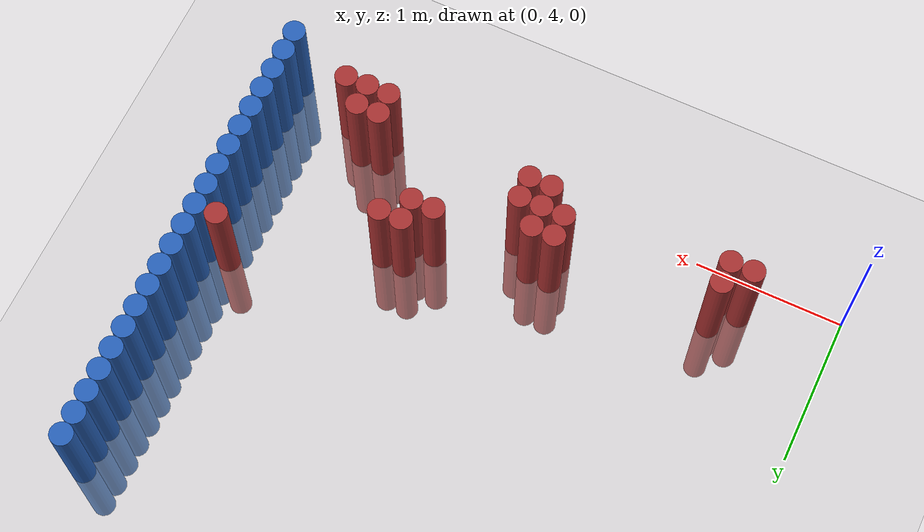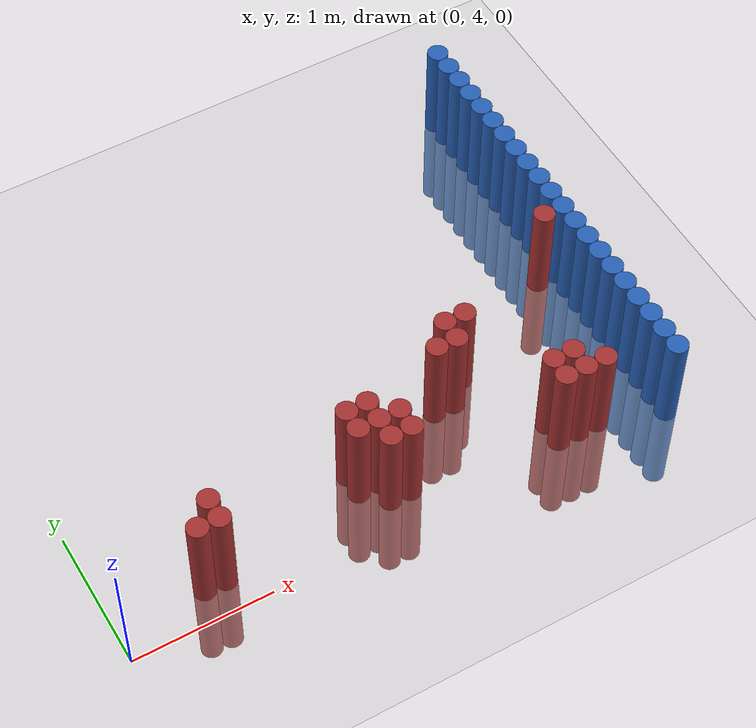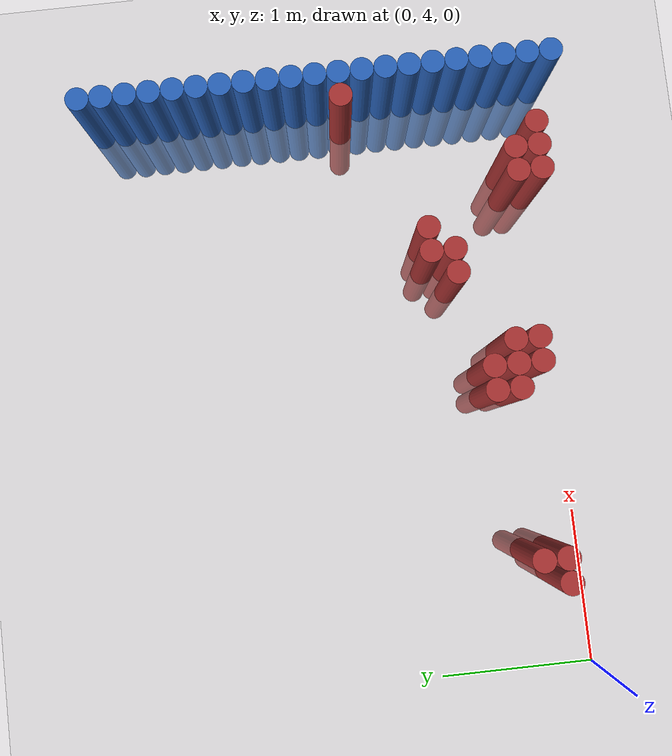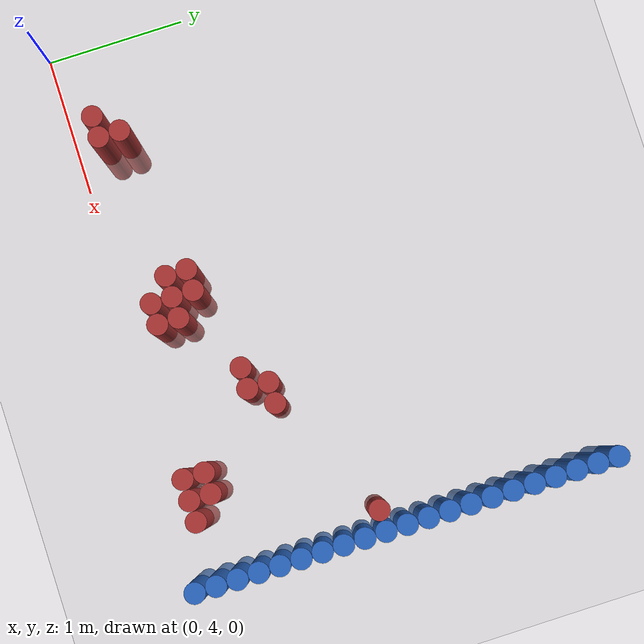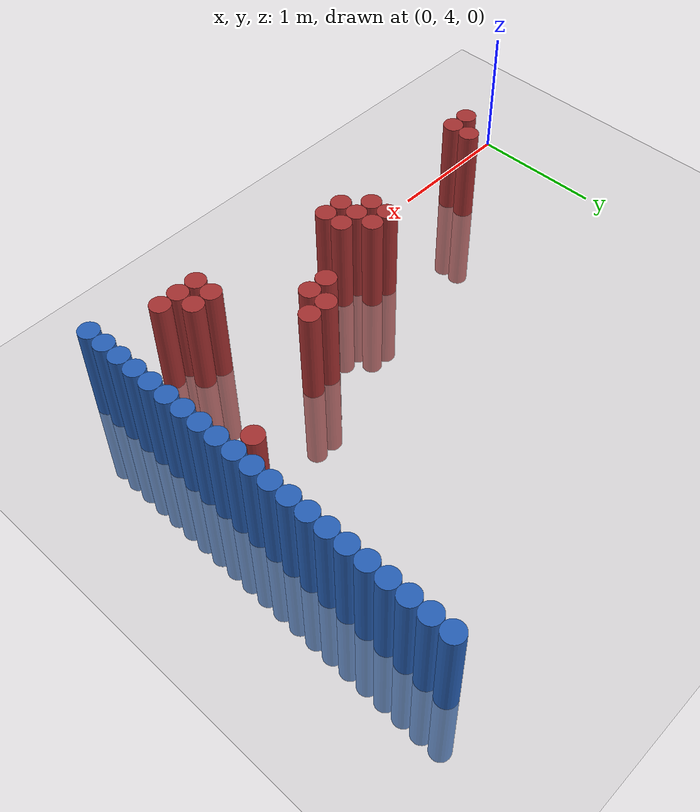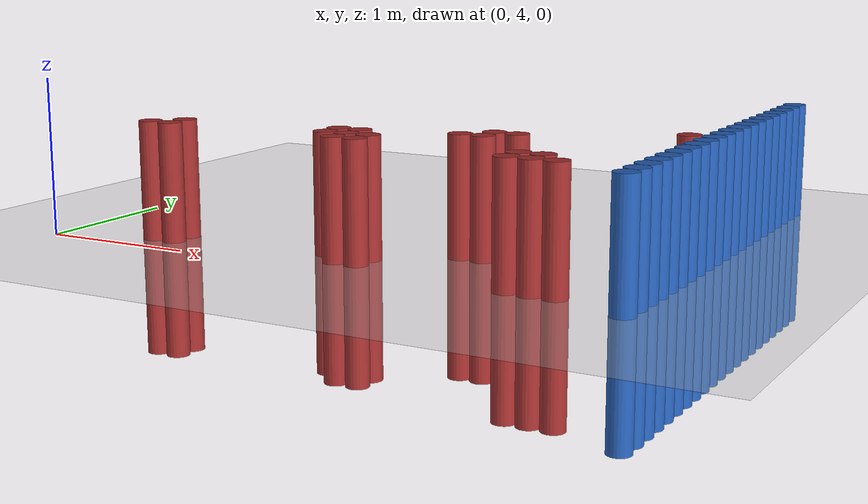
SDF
<sdf version="1.6">
 <world name="default">
  <model name="ground_plane">
   <static>1</static>
   <link name="link">
    <collision name="collision">
     <geometry><plane><normal>0 0 1</normal><size>100 100</size></plane></geometry>
     <surface><friction><ode><mu>100</mu><mu2>50</mu2></ode></friction></surface>
    </collision>
    <visual name="visual">
     <cast_shadows>0</cast_shadows>
     <geometry><plane><normal>0 0 1</normal><size>100 100</size></plane></geometry>
     <material>
      <script><uri>file://media/materials/scripts/gazebo.material</uri><name>Gazebo/Grey</name></script>
     </material>
    </visual>
   </link>
  </model>
  <model name="unit_cylinder_166">
   <static>1</static>
   <pose>3.925000 3.925000 0.000000 0.000000 0.000000 0.000000</pose>
   <link name="link">
    <inertial>
     <mass>1</mass>
     <inertia><ixx>0.145833</ixx><ixy>0</ixy><ixz>0</ixz><iyy>0.145833</iyy><iyz>0</iyz><izz>0.125</izz></inertia>
    </inertial>
    <collision name="collision">
     <geometry><cylinder><radius>0.075000</radius><length>1.5</length></cylinder></geometry>
    </collision>
    <visual name="visual">
     <geometry><cylinder><radius>0.075000</radius><length>1.5</length></cylinder></geometry>
     <material>
      <ambient>0.152000 0.379000 0.720000 1</ambient>
      <diffuse>0.152000 0.379000 0.720000 1</diffuse>
     </material>
     <material>
      <script><name>Gazebo/Grey</name><uri>file://media/materials/scripts/gazebo.material</uri></script>
     </material>
    </visual>
   </link>
  </model>
  <model name="unit_cylinder_168">
   <static>1</static>
   <pose>3.925000 4.075000 0.000000 0.000000 0.000000 0.000000</pose>
   <link name="link">
    <inertial>
     <mass>1</mass>
     <inertia><ixx>0.145833</ixx><ixy>0</ixy><ixz>0</ixz><iyy>0.145833</iyy><iyz>0</iyz><izz>0.125</izz></inertia>
    </inertial>
    <collision name="collision">
     <geometry><cylinder><radius>0.075000</radius><length>1.5</length></cylinder></geometry>
    </collision>
    <visual name="visual">
     <geometry><cylinder><radius>0.075000</radius><length>1.5</length></cylinder></geometry>
     <material>
      <ambient>0.152000 0.379000 0.720000 1</ambient>
      <diffuse>0.152000 0.379000 0.720000 1</diffuse>
     </material>
     <material>
      <script><name>Gazebo/Grey</name><uri>file://media/materials/scripts/gazebo.material</uri></script>
     </material>
    </visual>
   </link>
  </model>
  <model name="unit_cylinder_170">
   <static>1</static>
   <pose>3.925000 4.225000 0.000000 0.000000 0.000000 0.000000</pose>
   <link name="link">
    <inertial>
     <mass>1</mass>
     <inertia><ixx>0.145833</ixx><ixy>0</ixy><ixz>0</ixz><iyy>0.145833</iyy><iyz>0</iyz><izz>0.125</izz></inertia>
    </inertial>
    <collision name="collision">
     <geometry><cylinder><radius>0.075000</radius><length>1.5</length></cylinder></geometry>
    </collision>
    <visual name="visual">
     <geometry><cylinder><radius>0.075000</radius><length>1.5</length></cylinder></geometry>
     <material>
      <ambient>0.152000 0.379000 0.720000 1</ambient>
      <diffuse>0.152000 0.379000 0.720000 1</diffuse>
     </material>
     <material>
      <script><name>Gazebo/Grey</name><uri>file://media/materials/scripts/gazebo.material</uri></script>
     </material>
    </visual>
   </link>
  </model>
  <model name="unit_cylinder_172">
   <static>1</static>
   <pose>3.925000 4.375000 0.000000 0.000000 0.000000 0.000000</pose>
   <link name="link">
    <inertial>
     <mass>1</mass>
     <inertia><ixx>0.145833</ixx><ixy>0</ixy><ixz>0</ixz><iyy>0.145833</iyy><iyz>0</iyz><izz>0.125</izz></inertia>
    </inertial>
    <collision name="collision">
     <geometry><cylinder><radius>0.075000</radius><length>1.5</length></cylinder></geometry>
    </collision>
    <visual name="visual">
     <geometry><cylinder><radius>0.075000</radius><length>1.5</length></cylinder></geometry>
     <material>
      <ambient>0.152000 0.379000 0.720000 1</ambient>
      <diffuse>0.152000 0.379000 0.720000 1</diffuse>
     </material>
     <material>
      <script><name>Gazebo/Grey</name><uri>file://media/materials/scripts/gazebo.material</uri></script>
     </material>
    </visual>
   </link>
  </model>
  <model name="unit_cylinder_174">
   <static>1</static>
   <pose>3.925000 4.525000 0.000000 0.000000 0.000000 0.000000</pose>
   <link name="link">
    <inertial>
     <mass>1</mass>
     <inertia><ixx>0.145833</ixx><ixy>0</ixy><ixz>0</ixz><iyy>0.145833</iyy><iyz>0</iyz><izz>0.125</izz></inertia>
    </inertial>
    <collision name="collision">
     <geometry><cylinder><radius>0.075000</radius><length>1.5</length></cylinder></geometry>
    </collision>
    <visual name="visual">
     <geometry><cylinder><radius>0.075000</radius><length>1.5</length></cylinder></geometry>
     <material>
      <ambient>0.152000 0.379000 0.720000 1</ambient>
      <diffuse>0.152000 0.379000 0.720000 1</diffuse>
     </material>
     <material>
      <script><name>Gazebo/Grey</name><uri>file://media/materials/scripts/gazebo.material</uri></script>
     </material>
    </visual>
   </link>
  </model>
  <model name="unit_cylinder_176">
   <static>1</static>
   <pose>3.925000 4.675000 0.000000 0.000000 0.000000 0.000000</pose>
   <link name="link">
    <inertial>
     <mass>1</mass>
     <inertia><ixx>0.145833</ixx><ixy>0</ixy><ixz>0</ixz><iyy>0.145833</iyy><iyz>0</iyz><izz>0.125</izz></inertia>
    </inertial>
    <collision name="collision">
     <geometry><cylinder><radius>0.075000</radius><length>1.5</length></cylinder></geometry>
    </collision>
    <visual name="visual">
     <geometry><cylinder><radius>0.075000</radius><length>1.5</length></cylinder></geometry>
     <material>
      <ambient>0.152000 0.379000 0.720000 1</ambient>
      <diffuse>0.152000 0.379000 0.720000 1</diffuse>
     </material>
     <material>
      <script><name>Gazebo/Grey</name><uri>file://media/materials/scripts/gazebo.material</uri></script>
     </material>
    </visual>
   </link>
  </model>
  <model name="unit_cylinder_178">
   <static>1</static>
   <pose>3.925000 4.825000 0.000000 0.000000 0.000000 0.000000</pose>
   <link name="link">
    <inertial>
     <mass>1</mass>
     <inertia><ixx>0.145833</ixx><ixy>0</ixy><ixz>0</ixz><iyy>0.145833</iyy><iyz>0</iyz><izz>0.125</izz></inertia>
    </inertial>
    <collision name="collision">
     <geometry><cylinder><radius>0.075000</radius><length>1.5</length></cylinder></geometry>
    </collision>
    <visual name="visual">
     <geometry><cylinder><radius>0.075000</radius><length>1.5</length></cylinder></geometry>
     <material>
      <ambient>0.152000 0.379000 0.720000 1</ambient>
      <diffuse>0.152000 0.379000 0.720000 1</diffuse>
     </material>
     <material>
      <script><name>Gazebo/Grey</name><uri>file://media/materials/scripts/gazebo.material</uri></script>
     </material>
    </visual>
   </link>
  </model>
  <model name="unit_cylinder_180">
   <static>1</static>
   <pose>3.925000 4.975000 0.000000 0.000000 0.000000 0.000000</pose>
   <link name="link">
    <inertial>
     <mass>1</mass>
     <inertia><ixx>0.145833</ixx><ixy>0</ixy><ixz>0</ixz><iyy>0.145833</iyy><iyz>0</iyz><izz>0.125</izz></inertia>
    </inertial>
    <collision name="collision">
     <geometry><cylinder><radius>0.075000</radius><length>1.5</length></cylinder></geometry>
    </collision>
    <visual name="visual">
     <geometry><cylinder><radius>0.075000</radius><length>1.5</length></cylinder></geometry>
     <material>
      <ambient>0.152000 0.379000 0.720000 1</ambient>
      <diffuse>0.152000 0.379000 0.720000 1</diffuse>
     </material>
     <material>
      <script><name>Gazebo/Grey</name><uri>file://media/materials/scripts/gazebo.material</uri></script>
     </material>
    </visual>
   </link>
  </model>
  <model name="unit_cylinder_182">
   <static>1</static>
   <pose>3.925000 5.125000 0.000000 0.000000 0.000000 0.000000</pose>
   <link name="link">
    <inertial>
     <mass>1</mass>
     <inertia><ixx>0.145833</ixx><ixy>0</ixy><ixz>0</ixz><iyy>0.145833</iyy><iyz>0</iyz><izz>0.125</izz></inertia>
    </inertial>
    <collision name="collision">
     <geometry><cylinder><radius>0.075000</radius><length>1.5</length></cylinder></geometry>
    </collision>
    <visual name="visual">
     <geometry><cylinder><radius>0.075000</radius><length>1.5</length></cylinder></geometry>
     <material>
      <ambient>0.152000 0.379000 0.720000 1</ambient>
      <diffuse>0.152000 0.379000 0.720000 1</diffuse>
     </material>
     <material>
      <script><name>Gazebo/Grey</name><uri>file://media/materials/scripts/gazebo.material</uri></script>
     </material>
    </visual>
   </link>
  </model>
  <model name="unit_cylinder_184">
   <static>1</static>
   <pose>3.925000 5.275000 0.000000 0.000000 0.000000 0.000000</pose>
   <link name="link">
    <inertial>
     <mass>1</mass>
     <inertia><ixx>0.145833</ixx><ixy>0</ixy><ixz>0</ixz><iyy>0.145833</iyy><iyz>0</iyz><izz>0.125</izz></inertia>
    </inertial>
    <collision name="collision">
     <geometry><cylinder><radius>0.075000</radius><length>1.5</length></cylinder></geometry>
    </collision>
    <visual name="visual">
     <geometry><cylinder><radius>0.075000</radius><length>1.5</length></cylinder></geometry>
     <material>
      <ambient>0.152000 0.379000 0.720000 1</ambient>
      <diffuse>0.152000 0.379000 0.720000 1</diffuse>
     </material>
     <material>
      <script><name>Gazebo/Grey</name><uri>file://media/materials/scripts/gazebo.material</uri></script>
     </material>
    </visual>
   </link>
  </model>
  <model name="unit_cylinder_186">
   <static>1</static>
   <pose>3.925000 5.425000 0.000000 0.000000 0.000000 0.000000</pose>
   <link name="link">
    <inertial>
     <mass>1</mass>
     <inertia><ixx>0.145833</ixx><ixy>0</ixy><ixz>0</ixz><iyy>0.145833</iyy><iyz>0</iyz><izz>0.125</izz></inertia>
    </inertial>
    <collision name="collision">
     <geometry><cylinder><radius>0.075000</radius><length>1.5</length></cylinder></geometry>
    </collision>
    <visual name="visual">
     <geometry><cylinder><radius>0.075000</radius><length>1.5</length></cylinder></geometry>
     <material>
      <ambient>0.152000 0.379000 0.720000 1</ambient>
      <diffuse>0.152000 0.379000 0.720000 1</diffuse>
     </material>
     <material>
      <script><name>Gazebo/Grey</name><uri>file://media/materials/scripts/gazebo.material</uri></script>
     </material>
    </visual>
   </link>
  </model>
  <model name="unit_cylinder_188">
   <static>1</static>
   <pose>3.925000 5.575000 0.000000 0.000000 0.000000 0.000000</pose>
   <link name="link">
    <inertial>
     <mass>1</mass>
     <inertia><ixx>0.145833</ixx><ixy>0</ixy><ixz>0</ixz><iyy>0.145833</iyy><iyz>0</iyz><izz>0.125</izz></inertia>
    </inertial>
    <collision name="collision">
     <geometry><cylinder><radius>0.075000</radius><length>1.5</length></cylinder></geometry>
    </collision>
    <visual name="visual">
     <geometry><cylinder><radius>0.075000</radius><length>1.5</length></cylinder></geometry>
     <material>
      <ambient>0.152000 0.379000 0.720000 1</ambient>
      <diffuse>0.152000 0.379000 0.720000 1</diffuse>
     </material>
     <material>
      <script><name>Gazebo/Grey</name><uri>file://media/materials/scripts/gazebo.material</uri></script>
     </material>
    </visual>
   </link>
  </model>
  <model name="unit_cylinder_190">
   <static>1</static>
   <pose>3.925000 5.725000 0.000000 0.000000 0.000000 0.000000</pose>
   <link name="link">
    <inertial>
     <mass>1</mass>
     <inertia><ixx>0.145833</ixx><ixy>0</ixy><ixz>0</ixz><iyy>0.145833</iyy><iyz>0</iyz><izz>0.125</izz></inertia>
    </inertial>
    <collision name="collision">
     <geometry><cylinder><radius>0.075000</radius><length>1.5</length></cylinder></geometry>
    </collision>
    <visual name="visual">
     <geometry><cylinder><radius>0.075000</radius><length>1.5</length></cylinder></geometry>
     <material>
      <ambient>0.152000 0.379000 0.720000 1</ambient>
      <diffuse>0.152000 0.379000 0.720000 1</diffuse>
     </material>
     <material>
      <script><name>Gazebo/Grey</name><uri>file://media/materials/scripts/gazebo.material</uri></script>
     </material>
    </visual>
   </link>
  </model>
  <model name="unit_cylinder_192">
   <static>1</static>
   <pose>3.925000 5.875000 0.000000 0.000000 0.000000 0.000000</pose>
   <link name="link">
    <inertial>
     <mass>1</mass>
     <inertia><ixx>0.145833</ixx><ixy>0</ixy><ixz>0</ixz><iyy>0.145833</iyy><iyz>0</iyz><izz>0.125</izz></inertia>
    </inertial>
    <collision name="collision">
     <geometry><cylinder><radius>0.075000</radius><length>1.5</length></cylinder></geometry>
    </collision>
    <visual name="visual">
     <geometry><cylinder><radius>0.075000</radius><length>1.5</length></cylinder></geometry>
     <material>
      <ambient>0.152000 0.379000 0.720000 1</ambient>
      <diffuse>0.152000 0.379000 0.720000 1</diffuse>
     </material>
     <material>
      <script><name>Gazebo/Grey</name><uri>file://media/materials/scripts/gazebo.material</uri></script>
     </material>
    </visual>
   </link>
  </model>
  <model name="unit_cylinder_194">
   <static>1</static>
   <pose>3.925000 6.025000 0.000000 0.000000 0.000000 0.000000</pose>
   <link name="link">
    <inertial>
     <mass>1</mass>
     <inertia><ixx>0.145833</ixx><ixy>0</ixy><ixz>0</ixz><iyy>0.145833</iyy><iyz>0</iyz><izz>0.125</izz></inertia>
    </inertial>
    <collision name="collision">
     <geometry><cylinder><radius>0.075000</radius><length>1.5</length></cylinder></geometry>
    </collision>
    <visual name="visual">
     <geometry><cylinder><radius>0.075000</radius><length>1.5</length></cylinder></geometry>
     <material>
      <ambient>0.152000 0.379000 0.720000 1</ambient>
      <diffuse>0.152000 0.379000 0.720000 1</diffuse>
     </material>
     <material>
      <script><name>Gazebo/Grey</name><uri>file://media/materials/scripts/gazebo.material</uri></script>
     </material>
    </visual>
   </link>
  </model>
  <model name="unit_cylinder_196">
   <static>1</static>
   <pose>3.925000 6.175000 0.000000 0.000000 0.000000 0.000000</pose>
   <link name="link">
    <inertial>
     <mass>1</mass>
     <inertia><ixx>0.145833</ixx><ixy>0</ixy><ixz>0</ixz><iyy>0.145833</iyy><iyz>0</iyz><izz>0.125</izz></inertia>
    </inertial>
    <collision name="collision">
     <geometry><cylinder><radius>0.075000</radius><length>1.5</length></cylinder></geometry>
    </collision>
    <visual name="visual">
     <geometry><cylinder><radius>0.075000</radius><length>1.5</length></cylinder></geometry>
     <material>
      <ambient>0.152000 0.379000 0.720000 1</ambient>
      <diffuse>0.152000 0.379000 0.720000 1</diffuse>
     </material>
     <material>
      <script><name>Gazebo/Grey</name><uri>file://media/materials/scripts/gazebo.material</uri></script>
     </material>
    </visual>
   </link>
  </model>
  <model name="unit_cylinder_198">
   <static>1</static>
   <pose>3.925000 6.325000 0.000000 0.000000 0.000000 0.000000</pose>
   <link name="link">
    <inertial>
     <mass>1</mass>
     <inertia><ixx>0.145833</ixx><ixy>0</ixy><ixz>0</ixz><iyy>0.145833</iyy><iyz>0</iyz><izz>0.125</izz></inertia>
    </inertial>
    <collision name="collision">
     <geometry><cylinder><radius>0.075000</radius><length>1.5</length></cylinder></geometry>
    </collision>
    <visual name="visual">
     <geometry><cylinder><radius>0.075000</radius><length>1.5</length></cylinder></geometry>
     <material>
      <ambient>0.152000 0.379000 0.720000 1</ambient>
      <diffuse>0.152000 0.379000 0.720000 1</diffuse>
     </material>
     <material>
      <script><name>Gazebo/Grey</name><uri>file://media/materials/scripts/gazebo.material</uri></script>
     </material>
    </visual>
   </link>
  </model>
  <model name="unit_cylinder_200">
   <static>1</static>
   <pose>3.925000 6.475000 0.000000 0.000000 0.000000 0.000000</pose>
   <link name="link">
    <inertial>
     <mass>1</mass>
     <inertia><ixx>0.145833</ixx><ixy>0</ixy><ixz>0</ixz><iyy>0.145833</iyy><iyz>0</iyz><izz>0.125</izz></inertia>
    </inertial>
    <collision name="collision">
     <geometry><cylinder><radius>0.075000</radius><length>1.5</length></cylinder></geometry>
    </collision>
    <visual name="visual">
     <geometry><cylinder><radius>0.075000</radius><length>1.5</length></cylinder></geometry>
     <material>
      <ambient>0.152000 0.379000 0.720000 1</ambient>
      <diffuse>0.152000 0.379000 0.720000 1</diffuse>
     </material>
     <material>
      <script><name>Gazebo/Grey</name><uri>file://media/materials/scripts/gazebo.material</uri></script>
     </material>
    </visual>
   </link>
  </model>
  <model name="unit_cylinder_202">
   <static>1</static>
   <pose>3.925000 6.625000 0.000000 0.000000 0.000000 0.000000</pose>
   <link name="link">
    <inertial>
     <mass>1</mass>
     <inertia><ixx>0.145833</ixx><ixy>0</ixy><ixz>0</ixz><iyy>0.145833</iyy><iyz>0</iyz><izz>0.125</izz></inertia>
    </inertial>
    <collision name="collision">
     <geometry><cylinder><radius>0.075000</radius><length>1.5</length></cylinder></geometry>
    </collision>
    <visual name="visual">
     <geometry><cylinder><radius>0.075000</radius><length>1.5</length></cylinder></geometry>
     <material>
      <ambient>0.152000 0.379000 0.720000 1</ambient>
      <diffuse>0.152000 0.379000 0.720000 1</diffuse>
     </material>
     <material>
      <script><name>Gazebo/Grey</name><uri>file://media/materials/scripts/gazebo.material</uri></script>
     </material>
    </visual>
   </link>
  </model>
  <model name="unit_cylinder_204">
   <static>1</static>
   <pose>3.925000 6.775000 0.000000 0.000000 0.000000 0.000000</pose>
   <link name="link">
    <inertial>
     <mass>1</mass>
     <inertia><ixx>0.145833</ixx><ixy>0</ixy><ixz>0</ixz><iyy>0.145833</iyy><iyz>0</iyz><izz>0.125</izz></inertia>
    </inertial>
    <collision name="collision">
     <geometry><cylinder><radius>0.075000</radius><length>1.5</length></cylinder></geometry>
    </collision>
    <visual name="visual">
     <geometry><cylinder><radius>0.075000</radius><length>1.5</length></cylinder></geometry>
     <material>
      <ambient>0.152000 0.379000 0.720000 1</ambient>
      <diffuse>0.152000 0.379000 0.720000 1</diffuse>
     </material>
     <material>
      <script><name>Gazebo/Grey</name><uri>file://media/materials/scripts/gazebo.material</uri></script>
     </material>
    </visual>
   </link>
  </model>
  <model name="unit_cylinder_206">
   <static>1</static>
   <pose>3.925000 6.925000 0.000000 0.000000 0.000000 0.000000</pose>
   <link name="link">
    <inertial>
     <mass>1</mass>
     <inertia><ixx>0.145833</ixx><ixy>0</ixy><ixz>0</ixz><iyy>0.145833</iyy><iyz>0</iyz><izz>0.125</izz></inertia>
    </inertial>
    <collision name="collision">
     <geometry><cylinder><radius>0.075000</radius><length>1.5</length></cylinder></geometry>
    </collision>
    <visual name="visual">
     <geometry><cylinder><radius>0.075000</radius><length>1.5</length></cylinder></geometry>
     <material>
      <ambient>0.152000 0.379000 0.720000 1</ambient>
      <diffuse>0.152000 0.379000 0.720000 1</diffuse>
     </material>
     <material>
      <script><name>Gazebo/Grey</name><uri>file://media/materials/scripts/gazebo.material</uri></script>
     </material>
    </visual>
   </link>
  </model>
  <model name="unit_cylinder_351">
   <static>1</static>
   <pose>0.625000 4.225000 0.000000 0.000000 0.000000 0.000000</pose>
   <link name="link">
    <inertial>
     <mass>1</mass>
     <inertia><ixx>0.145833</ixx><ixy>0</ixy><ixz>0</ixz><iyy>0.145833</iyy><iyz>0</iyz><izz>0.125</izz></inertia>
    </inertial>
    <collision name="collision">
     <geometry><cylinder><radius>0.075000</radius><length>1.5</length></cylinder></geometry>
    </collision>
    <visual name="visual">
     <geometry><cylinder><radius>0.075000</radius><length>1.5</length></cylinder></geometry>
     <material>
      <ambient>0.648000 0.192000 0.192000 1</ambient>
      <diffuse>0.648000 0.192000 0.192000 1</diffuse>
     </material>
     <material>
      <script><name>Gazebo/Grey</name><uri>file://media/materials/scripts/gazebo.material</uri></script>
     </material>
    </visual>
   </link>
  </model>
  <model name="unit_cylinder_354">
   <static>1</static>
   <pose>0.775000 4.225000 0.000000 0.000000 0.000000 0.000000</pose>
   <link name="link">
    <inertial>
     <mass>1</mass>
     <inertia><ixx>0.145833</ixx><ixy>0</ixy><ixz>0</ixz><iyy>0.145833</iyy><iyz>0</iyz><izz>0.125</izz></inertia>
    </inertial>
    <collision name="collision">
     <geometry><cylinder><radius>0.075000</radius><length>1.5</length></cylinder></geometry>
    </collision>
    <visual name="visual">
     <geometry><cylinder><radius>0.075000</radius><length>1.5</length></cylinder></geometry>
     <material>
      <ambient>0.648000 0.192000 0.192000 1</ambient>
      <diffuse>0.648000 0.192000 0.192000 1</diffuse>
     </material>
     <material>
      <script><name>Gazebo/Grey</name><uri>file://media/materials/scripts/gazebo.material</uri></script>
     </material>
    </visual>
   </link>
  </model>
  <model name="unit_cylinder_355">
   <static>1</static>
   <pose>0.775000 4.375000 0.000000 0.000000 0.000000 0.000000</pose>
   <link name="link">
    <inertial>
     <mass>1</mass>
     <inertia><ixx>0.145833</ixx><ixy>0</ixy><ixz>0</ixz><iyy>0.145833</iyy><iyz>0</iyz><izz>0.125</izz></inertia>
    </inertial>
    <collision name="collision">
     <geometry><cylinder><radius>0.075000</radius><length>1.5</length></cylinder></geometry>
    </collision>
    <visual name="visual">
     <geometry><cylinder><radius>0.075000</radius><length>1.5</length></cylinder></geometry>
     <material>
      <ambient>0.648000 0.192000 0.192000 1</ambient>
      <diffuse>0.648000 0.192000 0.192000 1</diffuse>
     </material>
     <material>
      <script><name>Gazebo/Grey</name><uri>file://media/materials/scripts/gazebo.material</uri></script>
     </material>
    </visual>
   </link>
  </model>
  <model name="unit_cylinder_391">
   <static>1</static>
   <pose>1.825000 4.375000 0.000000 0.000000 0.000000 0.000000</pose>
   <link name="link">
    <inertial>
     <mass>1</mass>
     <inertia><ixx>0.145833</ixx><ixy>0</ixy><ixz>0</ixz><iyy>0.145833</iyy><iyz>0</iyz><izz>0.125</izz></inertia>
    </inertial>
    <collision name="collision">
     <geometry><cylinder><radius>0.075000</radius><length>1.5</length></cylinder></geometry>
    </collision>
    <visual name="visual">
     <geometry><cylinder><radius>0.075000</radius><length>1.5</length></cylinder></geometry>
     <material>
      <ambient>0.648000 0.192000 0.192000 1</ambient>
      <diffuse>0.648000 0.192000 0.192000 1</diffuse>
     </material>
     <material>
      <script><name>Gazebo/Grey</name><uri>file://media/materials/scripts/gazebo.material</uri></script>
     </material>
    </visual>
   </link>
  </model>
  <model name="unit_cylinder_392">
   <static>1</static>
   <pose>1.825000 4.525000 0.000000 0.000000 0.000000 0.000000</pose>
   <link name="link">
    <inertial>
     <mass>1</mass>
     <inertia><ixx>0.145833</ixx><ixy>0</ixy><ixz>0</ixz><iyy>0.145833</iyy><iyz>0</iyz><izz>0.125</izz></inertia>
    </inertial>
    <collision name="collision">
     <geometry><cylinder><radius>0.075000</radius><length>1.5</length></cylinder></geometry>
    </collision>
    <visual name="visual">
     <geometry><cylinder><radius>0.075000</radius><length>1.5</length></cylinder></geometry>
     <material>
      <ambient>0.648000 0.192000 0.192000 1</ambient>
      <diffuse>0.648000 0.192000 0.192000 1</diffuse>
     </material>
     <material>
      <script><name>Gazebo/Grey</name><uri>file://media/materials/scripts/gazebo.material</uri></script>
     </material>
    </visual>
   </link>
  </model>
  <model name="unit_cylinder_402">
   <static>1</static>
   <pose>1.975000 4.225000 0.000000 0.000000 0.000000 0.000000</pose>
   <link name="link">
    <inertial>
     <mass>1</mass>
     <inertia><ixx>0.145833</ixx><ixy>0</ixy><ixz>0</ixz><iyy>0.145833</iyy><iyz>0</iyz><izz>0.125</izz></inertia>
    </inertial>
    <collision name="collision">
     <geometry><cylinder><radius>0.075000</radius><length>1.5</length></cylinder></geometry>
    </collision>
    <visual name="visual">
     <geometry><cylinder><radius>0.075000</radius><length>1.5</length></cylinder></geometry>
     <material>
      <ambient>0.648000 0.192000 0.192000 1</ambient>
      <diffuse>0.648000 0.192000 0.192000 1</diffuse>
     </material>
     <material>
      <script><name>Gazebo/Grey</name><uri>file://media/materials/scripts/gazebo.material</uri></script>
     </material>
    </visual>
   </link>
  </model>
  <model name="unit_cylinder_403">
   <static>1</static>
   <pose>1.975000 4.375000 0.000000 0.000000 0.000000 0.000000</pose>
   <link name="link">
    <inertial>
     <mass>1</mass>
     <inertia><ixx>0.145833</ixx><ixy>0</ixy><ixz>0</ixz><iyy>0.145833</iyy><iyz>0</iyz><izz>0.125</izz></inertia>
    </inertial>
    <collision name="collision">
     <geometry><cylinder><radius>0.075000</radius><length>1.5</length></cylinder></geometry>
    </collision>
    <visual name="visual">
     <geometry><cylinder><radius>0.075000</radius><length>1.5</length></cylinder></geometry>
     <material>
      <ambient>0.648000 0.192000 0.192000 1</ambient>
      <diffuse>0.648000 0.192000 0.192000 1</diffuse>
     </material>
     <material>
      <script><name>Gazebo/Grey</name><uri>file://media/materials/scripts/gazebo.material</uri></script>
     </material>
    </visual>
   </link>
  </model>
  <model name="unit_cylinder_404">
   <static>1</static>
   <pose>1.975000 4.525000 0.000000 0.000000 0.000000 0.000000</pose>
   <link name="link">
    <inertial>
     <mass>1</mass>
     <inertia><ixx>0.145833</ixx><ixy>0</ixy><ixz>0</ixz><iyy>0.145833</iyy><iyz>0</iyz><izz>0.125</izz></inertia>
    </inertial>
    <collision name="collision">
     <geometry><cylinder><radius>0.075000</radius><length>1.5</length></cylinder></geometry>
    </collision>
    <visual name="visual">
     <geometry><cylinder><radius>0.075000</radius><length>1.5</length></cylinder></geometry>
     <material>
      <ambient>0.648000 0.192000 0.192000 1</ambient>
      <diffuse>0.648000 0.192000 0.192000 1</diffuse>
     </material>
     <material>
      <script><name>Gazebo/Grey</name><uri>file://media/materials/scripts/gazebo.material</uri></script>
     </material>
    </visual>
   </link>
  </model>
  <model name="unit_cylinder_412">
   <static>1</static>
   <pose>2.125000 4.225000 0.000000 0.000000 0.000000 0.000000</pose>
   <link name="link">
    <inertial>
     <mass>1</mass>
     <inertia><ixx>0.145833</ixx><ixy>0</ixy><ixz>0</ixz><iyy>0.145833</iyy><iyz>0</iyz><izz>0.125</izz></inertia>
    </inertial>
    <collision name="collision">
     <geometry><cylinder><radius>0.075000</radius><length>1.5</length></cylinder></geometry>
    </collision>
    <visual name="visual">
     <geometry><cylinder><radius>0.075000</radius><length>1.5</length></cylinder></geometry>
     <material>
      <ambient>0.648000 0.192000 0.192000 1</ambient>
      <diffuse>0.648000 0.192000 0.192000 1</diffuse>
     </material>
     <material>
      <script><name>Gazebo/Grey</name><uri>file://media/materials/scripts/gazebo.material</uri></script>
     </material>
    </visual>
   </link>
  </model>
  <model name="unit_cylinder_413">
   <static>1</static>
   <pose>2.125000 4.375000 0.000000 0.000000 0.000000 0.000000</pose>
   <link name="link">
    <inertial>
     <mass>1</mass>
     <inertia><ixx>0.145833</ixx><ixy>0</ixy><ixz>0</ixz><iyy>0.145833</iyy><iyz>0</iyz><izz>0.125</izz></inertia>
    </inertial>
    <collision name="collision">
     <geometry><cylinder><radius>0.075000</radius><length>1.5</length></cylinder></geometry>
    </collision>
    <visual name="visual">
     <geometry><cylinder><radius>0.075000</radius><length>1.5</length></cylinder></geometry>
     <material>
      <ambient>0.648000 0.192000 0.192000 1</ambient>
      <diffuse>0.648000 0.192000 0.192000 1</diffuse>
     </material>
     <material>
      <script><name>Gazebo/Grey</name><uri>file://media/materials/scripts/gazebo.material</uri></script>
     </material>
    </visual>
   </link>
  </model>
  <model name="unit_cylinder_426">
   <static>1</static>
   <pose>2.575000 4.675000 0.000000 0.000000 0.000000 0.000000</pose>
   <link name="link">
    <inertial>
     <mass>1</mass>
     <inertia><ixx>0.145833</ixx><ixy>0</ixy><ixz>0</ixz><iyy>0.145833</iyy><iyz>0</iyz><izz>0.125</izz></inertia>
    </inertial>
    <collision name="collision">
     <geometry><cylinder><radius>0.075000</radius><length>1.5</length></cylinder></geometry>
    </collision>
    <visual name="visual">
     <geometry><cylinder><radius>0.075000</radius><length>1.5</length></cylinder></geometry>
     <material>
      <ambient>0.648000 0.192000 0.192000 1</ambient>
      <diffuse>0.648000 0.192000 0.192000 1</diffuse>
     </material>
     <material>
      <script><name>Gazebo/Grey</name><uri>file://media/materials/scripts/gazebo.material</uri></script>
     </material>
    </visual>
   </link>
  </model>
  <model name="unit_cylinder_432">
   <static>1</static>
   <pose>2.725000 4.675000 0.000000 0.000000 0.000000 0.000000</pose>
   <link name="link">
    <inertial>
     <mass>1</mass>
     <inertia><ixx>0.145833</ixx><ixy>0</ixy><ixz>0</ixz><iyy>0.145833</iyy><iyz>0</iyz><izz>0.125</izz></inertia>
    </inertial>
    <collision name="collision">
     <geometry><cylinder><radius>0.075000</radius><length>1.5</length></cylinder></geometry>
    </collision>
    <visual name="visual">
     <geometry><cylinder><radius>0.075000</radius><length>1.5</length></cylinder></geometry>
     <material>
      <ambient>0.648000 0.192000 0.192000 1</ambient>
      <diffuse>0.648000 0.192000 0.192000 1</diffuse>
     </material>
     <material>
      <script><name>Gazebo/Grey</name><uri>file://media/materials/scripts/gazebo.material</uri></script>
     </material>
    </visual>
   </link>
  </model>
  <model name="unit_cylinder_433">
   <static>1</static>
   <pose>2.725000 4.825000 0.000000 0.000000 0.000000 0.000000</pose>
   <link name="link">
    <inertial>
     <mass>1</mass>
     <inertia><ixx>0.145833</ixx><ixy>0</ixy><ixz>0</ixz><iyy>0.145833</iyy><iyz>0</iyz><izz>0.125</izz></inertia>
    </inertial>
    <collision name="collision">
     <geometry><cylinder><radius>0.075000</radius><length>1.5</length></cylinder></geometry>
    </collision>
    <visual name="visual">
     <geometry><cylinder><radius>0.075000</radius><length>1.5</length></cylinder></geometry>
     <material>
      <ambient>0.648000 0.192000 0.192000 1</ambient>
      <diffuse>0.648000 0.192000 0.192000 1</diffuse>
     </material>
     <material>
      <script><name>Gazebo/Grey</name><uri>file://media/materials/scripts/gazebo.material</uri></script>
     </material>
    </visual>
   </link>
  </model>
  <model name="unit_cylinder_437">
   <static>1</static>
   <pose>2.875000 4.825000 0.000000 0.000000 0.000000 0.000000</pose>
   <link name="link">
    <inertial>
     <mass>1</mass>
     <inertia><ixx>0.145833</ixx><ixy>0</ixy><ixz>0</ixz><iyy>0.145833</iyy><iyz>0</iyz><izz>0.125</izz></inertia>
    </inertial>
    <collision name="collision">
     <geometry><cylinder><radius>0.075000</radius><length>1.5</length></cylinder></geometry>
    </collision>
    <visual name="visual">
     <geometry><cylinder><radius>0.075000</radius><length>1.5</length></cylinder></geometry>
     <material>
      <ambient>0.648000 0.192000 0.192000 1</ambient>
      <diffuse>0.648000 0.192000 0.192000 1</diffuse>
     </material>
     <material>
      <script><name>Gazebo/Grey</name><uri>file://media/materials/scripts/gazebo.material</uri></script>
     </material>
    </visual>
   </link>
  </model>
  <model name="unit_cylinder_441">
   <static>1</static>
   <pose>3.175000 4.075000 0.000000 0.000000 0.000000 0.000000</pose>
   <link name="link">
    <inertial>
     <mass>1</mass>
     <inertia><ixx>0.145833</ixx><ixy>0</ixy><ixz>0</ixz><iyy>0.145833</iyy><iyz>0</iyz><izz>0.125</izz></inertia>
    </inertial>
    <collision name="collision">
     <geometry><cylinder><radius>0.075000</radius><length>1.5</length></cylinder></geometry>
    </collision>
    <visual name="visual">
     <geometry><cylinder><radius>0.075000</radius><length>1.5</length></cylinder></geometry>
     <material>
      <ambient>0.648000 0.192000 0.192000 1</ambient>
      <diffuse>0.648000 0.192000 0.192000 1</diffuse>
     </material>
     <material>
      <script><name>Gazebo/Grey</name><uri>file://media/materials/scripts/gazebo.material</uri></script>
     </material>
    </visual>
   </link>
  </model>
  <model name="unit_cylinder_442">
   <static>1</static>
   <pose>3.175000 4.225000 0.000000 0.000000 0.000000 0.000000</pose>
   <link name="link">
    <inertial>
     <mass>1</mass>
     <inertia><ixx>0.145833</ixx><ixy>0</ixy><ixz>0</ixz><iyy>0.145833</iyy><iyz>0</iyz><izz>0.125</izz></inertia>
    </inertial>
    <collision name="collision">
     <geometry><cylinder><radius>0.075000</radius><length>1.5</length></cylinder></geometry>
    </collision>
    <visual name="visual">
     <geometry><cylinder><radius>0.075000</radius><length>1.5</length></cylinder></geometry>
     <material>
      <ambient>0.648000 0.192000 0.192000 1</ambient>
      <diffuse>0.648000 0.192000 0.192000 1</diffuse>
     </material>
     <material>
      <script><name>Gazebo/Grey</name><uri>file://media/materials/scripts/gazebo.material</uri></script>
     </material>
    </visual>
   </link>
  </model>
  <model name="unit_cylinder_444">
   <static>1</static>
   <pose>3.325000 4.075000 0.000000 0.000000 0.000000 0.000000</pose>
   <link name="link">
    <inertial>
     <mass>1</mass>
     <inertia><ixx>0.145833</ixx><ixy>0</ixy><ixz>0</ixz><iyy>0.145833</iyy><iyz>0</iyz><izz>0.125</izz></inertia>
    </inertial>
    <collision name="collision">
     <geometry><cylinder><radius>0.075000</radius><length>1.5</length></cylinder></geometry>
    </collision>
    <visual name="visual">
     <geometry><cylinder><radius>0.075000</radius><length>1.5</length></cylinder></geometry>
     <material>
      <ambient>0.648000 0.192000 0.192000 1</ambient>
      <diffuse>0.648000 0.192000 0.192000 1</diffuse>
     </material>
     <material>
      <script><name>Gazebo/Grey</name><uri>file://media/materials/scripts/gazebo.material</uri></script>
     </material>
    </visual>
   </link>
  </model>
  <model name="unit_cylinder_445">
   <static>1</static>
   <pose>3.325000 4.225000 0.000000 0.000000 0.000000 0.000000</pose>
   <link name="link">
    <inertial>
     <mass>1</mass>
     <inertia><ixx>0.145833</ixx><ixy>0</ixy><ixz>0</ixz><iyy>0.145833</iyy><iyz>0</iyz><izz>0.125</izz></inertia>
    </inertial>
    <collision name="collision">
     <geometry><cylinder><radius>0.075000</radius><length>1.5</length></cylinder></geometry>
    </collision>
    <visual name="visual">
     <geometry><cylinder><radius>0.075000</radius><length>1.5</length></cylinder></geometry>
     <material>
      <ambient>0.648000 0.192000 0.192000 1</ambient>
      <diffuse>0.648000 0.192000 0.192000 1</diffuse>
     </material>
     <material>
      <script><name>Gazebo/Grey</name><uri>file://media/materials/scripts/gazebo.material</uri></script>
     </material>
    </visual>
   </link>
  </model>
  <model name="unit_cylinder_452">
   <static>1</static>
   <pose>3.475000 4.075000 0.000000 0.000000 0.000000 0.000000</pose>
   <link name="link">
    <inertial>
     <mass>1</mass>
     <inertia><ixx>0.145833</ixx><ixy>0</ixy><ixz>0</ixz><iyy>0.145833</iyy><iyz>0</iyz><izz>0.125</izz></inertia>
    </inertial>
    <collision name="collision">
     <geometry><cylinder><radius>0.075000</radius><length>1.5</length></cylinder></geometry>
    </collision>
    <visual name="visual">
     <geometry><cylinder><radius>0.075000</radius><length>1.5</length></cylinder></geometry>
     <material>
      <ambient>0.648000 0.192000 0.192000 1</ambient>
      <diffuse>0.648000 0.192000 0.192000 1</diffuse>
     </material>
     <material>
      <script><name>Gazebo/Grey</name><uri>file://media/materials/scripts/gazebo.material</uri></script>
     </material>
    </visual>
   </link>
  </model>
  <model name="unit_cylinder_469">
   <static>1</static>
   <pose>3.775000 5.275000 0.000000 0.000000 0.000000 0.000000</pose>
   <link name="link">
    <inertial>
     <mass>1</mass>
     <inertia><ixx>0.145833</ixx><ixy>0</ixy><ixz>0</ixz><iyy>0.145833</iyy><iyz>0</iyz><izz>0.125</izz></inertia>
    </inertial>
    <collision name="collision">
     <geometry><cylinder><radius>0.075000</radius><length>1.5</length></cylinder></geometry>
    </collision>
    <visual name="visual">
     <geometry><cylinder><radius>0.075000</radius><length>1.5</length></cylinder></geometry>
     <material>
      <ambient>0.648000 0.192000 0.192000 1</ambient>
      <diffuse>0.648000 0.192000 0.192000 1</diffuse>
     </material>
     <material>
      <script><name>Gazebo/Grey</name><uri>file://media/materials/scripts/gazebo.material</uri></script>
     </material>
    </visual>
   </link>
  </model>
  <model name="unit_cylinder_509">
   <static>1</static>
   <pose>3.925000 3.925000 0.000000 0.000000 0.000000 0.000000</pose>
   <link name="link">
    <inertial>
     <mass>1</mass>
     <inertia><ixx>0.145833</ixx><ixy>0</ixy><ixz>0</ixz><iyy>0.145833</iyy><iyz>0</iyz><izz>0.125</izz></inertia>
    </inertial>
    <collision name="collision">
     <geometry><cylinder><radius>0.075000</radius><length>1.5</length></cylinder></geometry>
    </collision>
    <visual name="visual">
     <geometry><cylinder><radius>0.075000</radius><length>1.5</length></cylinder></geometry>
     <material>
      <ambient>0.152000 0.379000 0.720000 1</ambient>
      <diffuse>0.152000 0.379000 0.720000 1</diffuse>
     </material>
     <material>
      <script><name>Gazebo/Grey</name><uri>file://media/materials/scripts/gazebo.material</uri></script>
     </material>
    </visual>
   </link>
  </model>
  <model name="unit_cylinder_510">
   <static>1</static>
   <pose>3.925000 4.075000 0.000000 0.000000 0.000000 0.000000</pose>
   <link name="link">
    <inertial>
     <mass>1</mass>
     <inertia><ixx>0.145833</ixx><ixy>0</ixy><ixz>0</ixz><iyy>0.145833</iyy><iyz>0</iyz><izz>0.125</izz></inertia>
    </inertial>
    <collision name="collision">
     <geometry><cylinder><radius>0.075000</radius><length>1.5</length></cylinder></geometry>
    </collision>
    <visual name="visual">
     <geometry><cylinder><radius>0.075000</radius><length>1.5</length></cylinder></geometry>
     <material>
      <ambient>0.152000 0.379000 0.720000 1</ambient>
      <diffuse>0.152000 0.379000 0.720000 1</diffuse>
     </material>
     <material>
      <script><name>Gazebo/Grey</name><uri>file://media/materials/scripts/gazebo.material</uri></script>
     </material>
    </visual>
   </link>
  </model>
  <model name="unit_cylinder_511">
   <static>1</static>
   <pose>3.925000 4.225000 0.000000 0.000000 0.000000 0.000000</pose>
   <link name="link">
    <inertial>
     <mass>1</mass>
     <inertia><ixx>0.145833</ixx><ixy>0</ixy><ixz>0</ixz><iyy>0.145833</iyy><iyz>0</iyz><izz>0.125</izz></inertia>
    </inertial>
    <collision name="collision">
     <geometry><cylinder><radius>0.075000</radius><length>1.5</length></cylinder></geometry>
    </collision>
    <visual name="visual">
     <geometry><cylinder><radius>0.075000</radius><length>1.5</length></cylinder></geometry>
     <material>
      <ambient>0.152000 0.379000 0.720000 1</ambient>
      <diffuse>0.152000 0.379000 0.720000 1</diffuse>
     </material>
     <material>
      <script><name>Gazebo/Grey</name><uri>file://media/materials/scripts/gazebo.material</uri></script>
     </material>
    </visual>
   </link>
  </model>
  <model name="unit_cylinder_512">
   <static>1</static>
   <pose>3.925000 4.375000 0.000000 0.000000 0.000000 0.000000</pose>
   <link name="link">
    <inertial>
     <mass>1</mass>
     <inertia><ixx>0.145833</ixx><ixy>0</ixy><ixz>0</ixz><iyy>0.145833</iyy><iyz>0</iyz><izz>0.125</izz></inertia>
    </inertial>
    <collision name="collision">
     <geometry><cylinder><radius>0.075000</radius><length>1.5</length></cylinder></geometry>
    </collision>
    <visual name="visual">
     <geometry><cylinder><radius>0.075000</radius><length>1.5</length></cylinder></geometry>
     <material>
      <ambient>0.152000 0.379000 0.720000 1</ambient>
      <diffuse>0.152000 0.379000 0.720000 1</diffuse>
     </material>
     <material>
      <script><name>Gazebo/Grey</name><uri>file://media/materials/scripts/gazebo.material</uri></script>
     </material>
    </visual>
   </link>
  </model>
  <model name="unit_cylinder_513">
   <static>1</static>
   <pose>3.925000 4.525000 0.000000 0.000000 0.000000 0.000000</pose>
   <link name="link">
    <inertial>
     <mass>1</mass>
     <inertia><ixx>0.145833</ixx><ixy>0</ixy><ixz>0</ixz><iyy>0.145833</iyy><iyz>0</iyz><izz>0.125</izz></inertia>
    </inertial>
    <collision name="collision">
     <geometry><cylinder><radius>0.075000</radius><length>1.5</length></cylinder></geometry>
    </collision>
    <visual name="visual">
     <geometry><cylinder><radius>0.075000</radius><length>1.5</length></cylinder></geometry>
     <material>
      <ambient>0.152000 0.379000 0.720000 1</ambient>
      <diffuse>0.152000 0.379000 0.720000 1</diffuse>
     </material>
     <material>
      <script><name>Gazebo/Grey</name><uri>file://media/materials/scripts/gazebo.material</uri></script>
     </material>
    </visual>
   </link>
  </model>
  <model name="unit_cylinder_514">
   <static>1</static>
   <pose>3.925000 4.675000 0.000000 0.000000 0.000000 0.000000</pose>
   <link name="link">
    <inertial>
     <mass>1</mass>
     <inertia><ixx>0.145833</ixx><ixy>0</ixy><ixz>0</ixz><iyy>0.145833</iyy><iyz>0</iyz><izz>0.125</izz></inertia>
    </inertial>
    <collision name="collision">
     <geometry><cylinder><radius>0.075000</radius><length>1.5</length></cylinder></geometry>
    </collision>
    <visual name="visual">
     <geometry><cylinder><radius>0.075000</radius><length>1.5</length></cylinder></geometry>
     <material>
      <ambient>0.152000 0.379000 0.720000 1</ambient>
      <diffuse>0.152000 0.379000 0.720000 1</diffuse>
     </material>
     <material>
      <script><name>Gazebo/Grey</name><uri>file://media/materials/scripts/gazebo.material</uri></script>
     </material>
    </visual>
   </link>
  </model>
  <model name="unit_cylinder_515">
   <static>1</static>
   <pose>3.925000 4.825000 0.000000 0.000000 0.000000 0.000000</pose>
   <link name="link">
    <inertial>
     <mass>1</mass>
     <inertia><ixx>0.145833</ixx><ixy>0</ixy><ixz>0</ixz><iyy>0.145833</iyy><iyz>0</iyz><izz>0.125</izz></inertia>
    </inertial>
    <collision name="collision">
     <geometry><cylinder><radius>0.075000</radius><length>1.5</length></cylinder></geometry>
    </collision>
    <visual name="visual">
     <geometry><cylinder><radius>0.075000</radius><length>1.5</length></cylinder></geometry>
     <material>
      <ambient>0.152000 0.379000 0.720000 1</ambient>
      <diffuse>0.152000 0.379000 0.720000 1</diffuse>
     </material>
     <material>
      <script><name>Gazebo/Grey</name><uri>file://media/materials/scripts/gazebo.material</uri></script>
     </material>
    </visual>
   </link>
  </model>
  <model name="unit_cylinder_516">
   <static>1</static>
   <pose>3.925000 4.975000 0.000000 0.000000 0.000000 0.000000</pose>
   <link name="link">
    <inertial>
     <mass>1</mass>
     <inertia><ixx>0.145833</ixx><ixy>0</ixy><ixz>0</ixz><iyy>0.145833</iyy><iyz>0</iyz><izz>0.125</izz></inertia>
    </inertial>
    <collision name="collision">
     <geometry><cylinder><radius>0.075000</radius><length>1.5</length></cylinder></geometry>
    </collision>
    <visual name="visual">
     <geometry><cylinder><radius>0.075000</radius><length>1.5</length></cylinder></geometry>
     <material>
      <ambient>0.152000 0.379000 0.720000 1</ambient>
      <diffuse>0.152000 0.379000 0.720000 1</diffuse>
     </material>
     <material>
      <script><name>Gazebo/Grey</name><uri>file://media/materials/scripts/gazebo.material</uri></script>
     </material>
    </visual>
   </link>
  </model>
  <model name="unit_cylinder_517">
   <static>1</static>
   <pose>3.925000 5.125000 0.000000 0.000000 0.000000 0.000000</pose>
   <link name="link">
    <inertial>
     <mass>1</mass>
     <inertia><ixx>0.145833</ixx><ixy>0</ixy><ixz>0</ixz><iyy>0.145833</iyy><iyz>0</iyz><izz>0.125</izz></inertia>
    </inertial>
    <collision name="collision">
     <geometry><cylinder><radius>0.075000</radius><length>1.5</length></cylinder></geometry>
    </collision>
    <visual name="visual">
     <geometry><cylinder><radius>0.075000</radius><length>1.5</length></cylinder></geometry>
     <material>
      <ambient>0.152000 0.379000 0.720000 1</ambient>
      <diffuse>0.152000 0.379000 0.720000 1</diffuse>
     </material>
     <material>
      <script><name>Gazebo/Grey</name><uri>file://media/materials/scripts/gazebo.material</uri></script>
     </material>
    </visual>
   </link>
  </model>
  <model name="unit_cylinder_518">
   <static>1</static>
   <pose>3.925000 5.275000 0.000000 0.000000 0.000000 0.000000</pose>
   <link name="link">
    <inertial>
     <mass>1</mass>
     <inertia><ixx>0.145833</ixx><ixy>0</ixy><ixz>0</ixz><iyy>0.145833</iyy><iyz>0</iyz><izz>0.125</izz></inertia>
    </inertial>
    <collision name="collision">
     <geometry><cylinder><radius>0.075000</radius><length>1.5</length></cylinder></geometry>
    </collision>
    <visual name="visual">
     <geometry><cylinder><radius>0.075000</radius><length>1.5</length></cylinder></geometry>
     <material>
      <ambient>0.152000 0.379000 0.720000 1</ambient>
      <diffuse>0.152000 0.379000 0.720000 1</diffuse>
     </material>
     <material>
      <script><name>Gazebo/Grey</name><uri>file://media/materials/scripts/gazebo.material</uri></script>
     </material>
    </visual>
   </link>
  </model>
  <model name="unit_cylinder_519">
   <static>1</static>
   <pose>3.925000 5.425000 0.000000 0.000000 0.000000 0.000000</pose>
   <link name="link">
    <inertial>
     <mass>1</mass>
     <inertia><ixx>0.145833</ixx><ixy>0</ixy><ixz>0</ixz><iyy>0.145833</iyy><iyz>0</iyz><izz>0.125</izz></inertia>
    </inertial>
    <collision name="collision">
     <geometry><cylinder><radius>0.075000</radius><length>1.5</length></cylinder></geometry>
    </collision>
    <visual name="visual">
     <geometry><cylinder><radius>0.075000</radius><length>1.5</length></cylinder></geometry>
     <material>
      <ambient>0.152000 0.379000 0.720000 1</ambient>
      <diffuse>0.152000 0.379000 0.720000 1</diffuse>
     </material>
     <material>
      <script><name>Gazebo/Grey</name><uri>file://media/materials/scripts/gazebo.material</uri></script>
     </material>
    </visual>
   </link>
  </model>
 </world>
</sdf>
